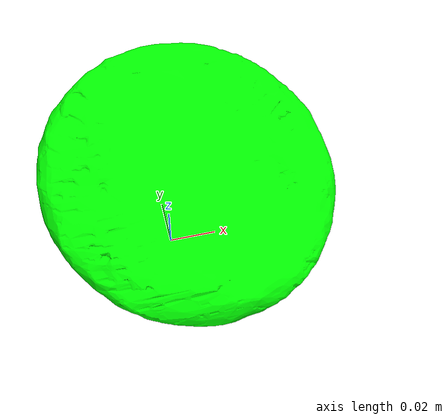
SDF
<?xml version="1.0" ?>
<sdf version="1.5">
  <model name="utensil_nerf_bowl">

    <static>false</static>

    <link name="link">

      <inertial>
        <mass>0.5</mass>
        <inertia>
          <ixx>0.1</ixx>
          <ixy>0</ixy>
          <ixz>0</ixz>
          <iyy>0.1</iyy>
          <iyz>0</iyz>
          <izz>0.1</izz>
        </inertia>
        <pose frame=''>0 0 0 0 -0 0</pose>
      </inertial>

      <collision name="collision">
        <geometry>
          <mesh>
            <uri>model://utensil_nerf_bowl/meshes/mesh_lowpoly.dae</uri>
          </mesh>
        </geometry>
        <surface>
          <friction>
            <ode>
              <mu>50.0</mu>
              <mu2>50.0</mu2>
            </ode>
          </friction>
          <contact>
          	<ode>
          		<min_depth>0.001</min_depth>
          		<max_vel>0.0</max_vel>
          	</ode>
          </contact>
        </surface>
      </collision>

      <visual name="visual">
        <geometry>
          <mesh>
            <uri>model://utensil_nerf_bowl/meshes/mesh_lowpoly.dae</uri>
          </mesh>
        </geometry>
        <material>
          <ambient>0 1 0</ambient>
          <diffuse>0 1 0</diffuse>
          <specular>0 1 0</specular>
        </material>
      </visual>

    </link>
  </model>
</sdf>
